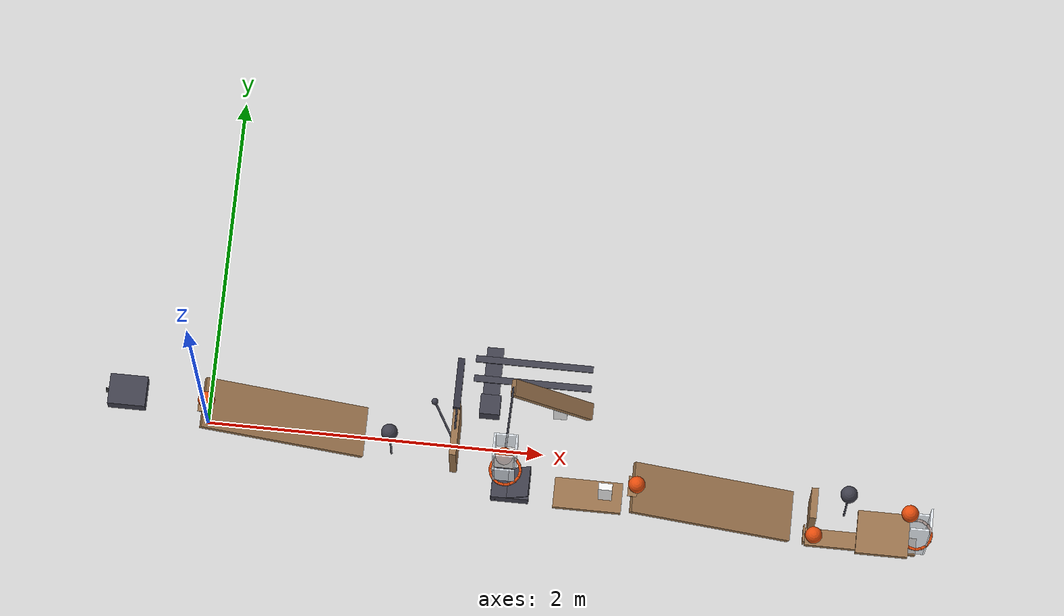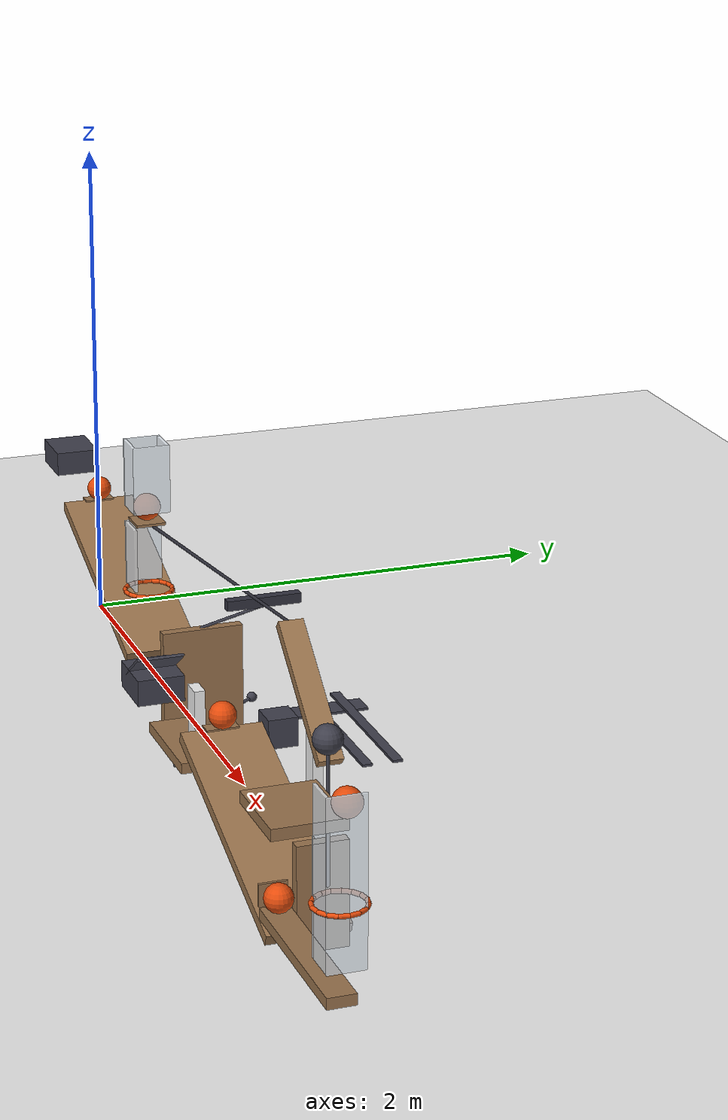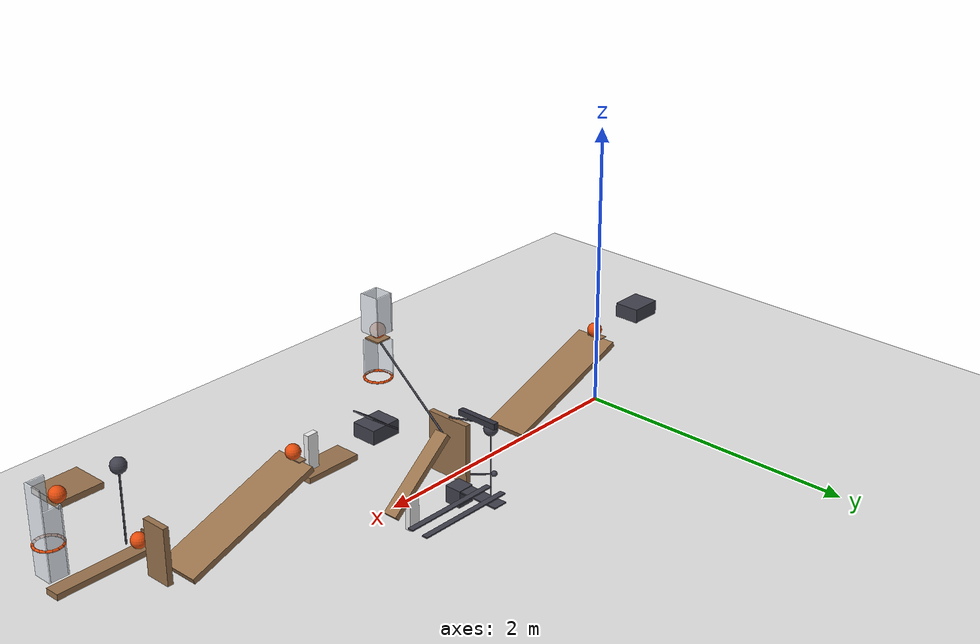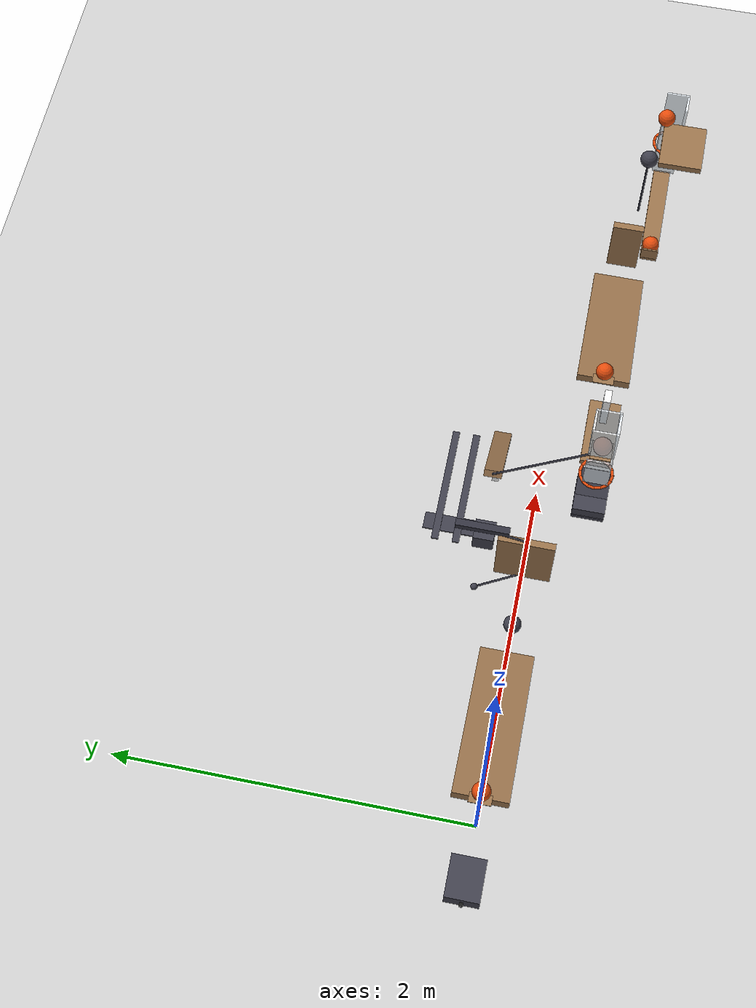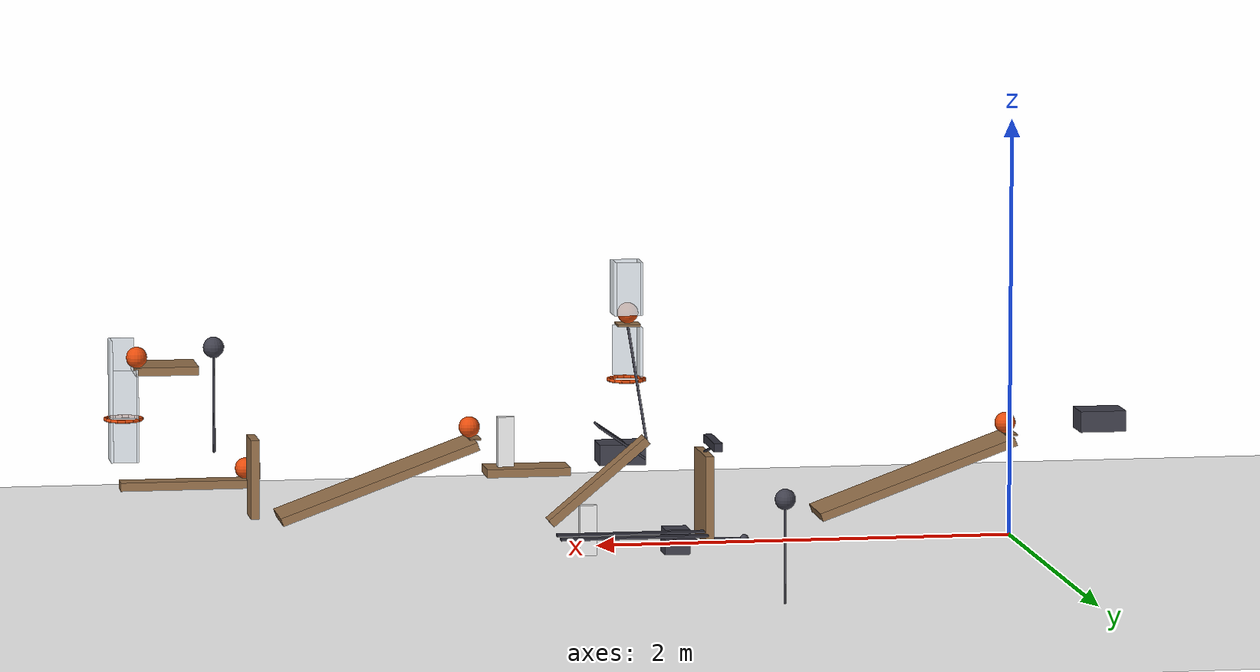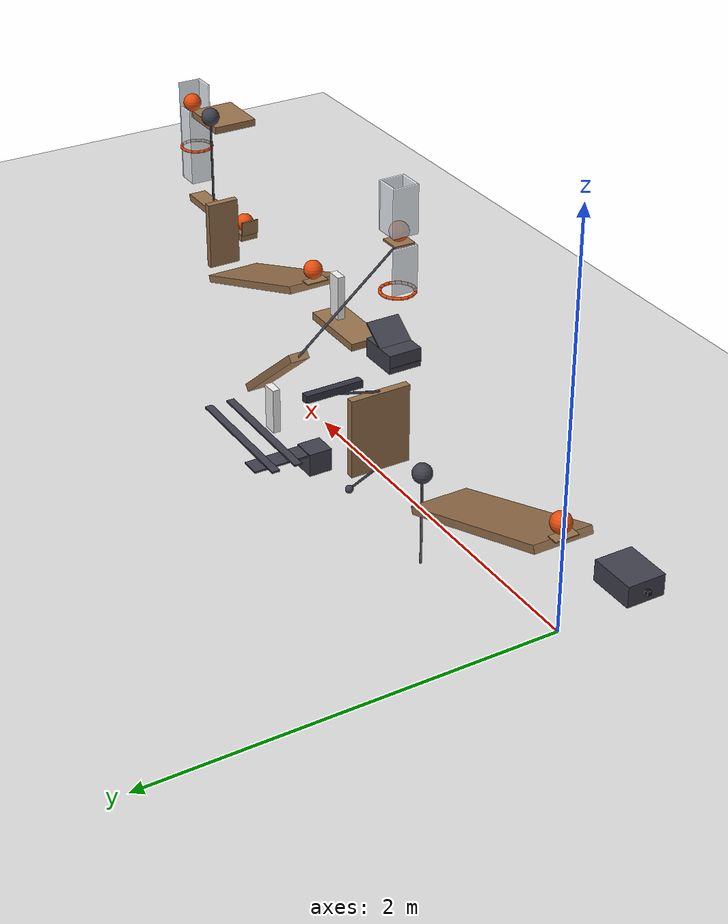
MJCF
<mujoco model="spring_and_gravity_cascade_side_striker_revision">
  <compiler angle="radian"/>
  <option timestep="0.002"/>
  <worldbody>
    <geom name="floor" type="plane" size="12 12 0.1" friction="0.68 0 0"/>
    <body name="cart1" pos="-0.436059 0 0.551004">
      <joint name="cart1_track" type="slide" pos="0 0 0" axis="1 0 0" limited="true" range="-0.2 0.4" damping="0.2"/>
      <geom name="cart1" type="box" pos="0 0 0" size="0.11 0.09 0.05" mass="0.5" friction="0.68 0.005 0.0001" solref="0.01 0.690107" rgba="0.25 0.25 0.3 1"/>
    </body>
    <body name="cart1 spring pusher" pos="-0.556059 0 0.551004">
      <joint name="cart1_spring_track" type="slide" pos="0 0 0" axis="1 0 0" limited="true" range="-0.2 0" stiffness="18" springref="0" damping="0.2"/>
      <geom name="cart1 spring pusher" type="box" pos="0 0 0" size="0.01 0.01 0.01" mass="0.02" friction="0.68 0.005 0.0001" solref="0.01 0.690107" rgba="0.1 0.1 0.1 1"/>
    </body>
    <body name="ramp1">
      <geom name="ramp1" type="box" pos="0.469847 0 0.302216" size="0.5 0.15 0.02" euler="0 0.349066 0" friction="0.68 0.005 0.0001" solref="0.01 0.690107" rgba="0.6 0.45 0.3 1"/>
    </body>
    <body name="ball1 starting pad">
      <geom name="ball1 starting pad" type="box" pos="0.001441 0 0.492004" size="0.0275 0.06 0.003" friction="0.68 0.005 0.0001" solref="0.01 0.690107" rgba="0.6 0.45 0.3 1"/>
    </body>
    <body name="ball1" pos="0.023941 0 0.545004">
      <freejoint/>
      <geom name="ball1" type="sphere" pos="0 0 0" size="0.05" mass="0.2" condim="6" friction="0.68 0 0" solref="0.01 0.690107" rgba="0.9 0.3 0.05 1"/>
    </body>
    <body name="pendulum1" pos="1.08969 0 -0.3">
      <joint name="pendulum1_hinge" type="hinge" pos="0 0 0" axis="0 1 0" limited="true" range="0 0.698132" damping="0.04"/>
      <geom name="pendulum1" type="sphere" pos="0 0 0.5" size="0.05" mass="0.33" friction="0.68 0.005 0.0001" solref="0.01 0.690107" rgba="0.25 0.25 0.3 1"/>
      <geom name="pendulum1 arm" type="capsule" size="0.006" fromto="0 0 0 0 0 0.45" mass="0.02" friction="0.68 0.005 0.0001" solref="0.01 0.690107" contype="0" conaffinity="0" rgba="0.25 0.25 0.3 1"/>
    </body>
    <body name="door1" pos="1.48109 0 0.44">
      <joint name="door1_hinge" type="hinge" pos="0 0 0" axis="0 1 0" limited="true" range="-1.22173 0" damping="0.04"/>
      <geom name="door1" type="box" pos="0 0 -0.21" size="0.21 0.16 0.02" euler="0 -1.5708 0" mass="0.45" friction="0.68 0.005 0.0001" solref="0.01 0.690107" rgba="0.6 0.45 0.3 1"/>
      <geom name="door1 counterweight" type="box" pos="0 0.25 0.08" size="0.02 0.15 0.02" mass="20" friction="0.68 0.005 0.0001" solref="0.01 0.690107" rgba="0.2 0.2 0.25 1"/>
      <geom name="door1 counterweight stem" type="capsule" size="0.006" fromto="0 0 0 0 0.25 0.06" mass="0.001" friction="0.68 0.005 0.0001" solref="0.01 0.690107" rgba="0.25 0.25 0.3 1"/>
      <geom name="door1 striker" type="sphere" pos="-0.15 0.25 -0.38" size="0.02" mass="0.001" friction="0.68 0.005 0.0001" solref="0.01 0.690107" rgba="0.25 0.25 0.3 1"/>
      <geom name="door1 striker arm" type="capsule" size="0.006" fromto="0 0 -0.42 -0.15 0.25 -0.38" mass="0.001" friction="0.68 0.005 0.0001" solref="0.01 0.690107" rgba="0.25 0.25 0.3 1"/>
    </body>
    <body name="block1" pos="1.66109 0.25 0.06">
      <freejoint/>
      <geom name="block1" type="box" pos="0 0 0" size="0.06 0.06 0.06" mass="0.35" friction="0.68 0.005 0.0001" solref="0.01 0.690107" rgba="0.25 0.25 0.3 1"/>
      <geom name="block1 anti lift bar" type="box" pos="0 0.15 0.05" size="0.05 0.2 0.005" mass="0.001" friction="0.68 0.005 0.0001" solref="0.01 0.690107" rgba="0.25 0.25 0.3 1"/>
    </body>
    <body name="block1 left guide rail">
      <geom name="block1 left guide rail" type="box" pos="1.9 0.4 0.123" size="0.35 0.02 0.005" friction="0.68 0.005 0.0001" solref="0.01 0.690107" rgba="0.25 0.25 0.3 1"/>
    </body>
    <body name="block1 right guide rail">
      <geom name="block1 right guide rail" type="box" pos="1.9 0.52 0.123" size="0.35 0.02 0.005" friction="0.68 0.005 0.0001" solref="0.01 0.690107" rgba="0.25 0.25 0.3 1"/>
    </body>
    <body name="domino1" pos="2.08109 0.25 0.12">
      <freejoint/>
      <geom name="domino1" type="box" pos="0 0 0" size="0.04 0.02 0.12" mass="0.25" friction="0.68 0.005 0.0001" solref="0.01 0.690107" rgba="0.95 0.95 0.95 1"/>
    </body>
    <body name="lever1" pos="2.03127 0.25 0.352837">
      <joint name="lever1_hinge" type="hinge" pos="0 0 0" axis="0 1 0" limited="true" range="0 0.785398" damping="0.04"/>
      <geom name="lever1" type="box" pos="-5e-07 0 -5e-07" size="0.3 0.05 0.02" euler="0 0.698132 0" mass="0.5" friction="0.68 0.005 0.0001" solref="0.01 0.690107" rgba="0.6 0.45 0.3 1"/>
      <geom name="ball2 cradle" type="box" pos="-0.229814 -0.55 0.662836" size="0.055 0.055 0.005" mass="0.001" friction="0.68 0.005 0.0001" solref="0.01 0.690107" rgba="0.6 0.45 0.3 1"/>
      <geom name="ball2 carrier" type="capsule" size="0.006" fromto="-0.229814 0 0.192836 -0.229814 -0.55 0.657836" mass="0.001" friction="0.68 0.005 0.0001" solref="0.01 0.690107" rgba="0.25 0.25 0.3 1"/>
    </body>
    <body name="ball2" pos="1.80146 -0.3 1.07067">
      <freejoint/>
      <geom name="ball2" type="sphere" pos="0 0 0" size="0.05" mass="0.2" condim="6" friction="0.68 0 0" solref="0.01 0.690107" rgba="0.9 0.3 0.05 1"/>
    </body>
    <body name="ring1">
      <geom name="ring1_00" type="capsule" size="0.008" fromto="1.89546 -0.3 0.750673 1.88876 -0.266324 0.750673" friction="0.68 0.005 0.0001" solref="0.01 0.690107" rgba="0.9 0.3 0.05 1"/>
      <geom name="ring1_01" type="capsule" size="0.008" fromto="1.88876 -0.266324 0.750673 1.86969 -0.237775 0.750673" friction="0.68 0.005 0.0001" solref="0.01 0.690107" rgba="0.9 0.3 0.05 1"/>
      <geom name="ring1_02" type="capsule" size="0.008" fromto="1.86969 -0.237775 0.750673 1.84114 -0.218699 0.750673" friction="0.68 0.005 0.0001" solref="0.01 0.690107" rgba="0.9 0.3 0.05 1"/>
      <geom name="ring1_03" type="capsule" size="0.008" fromto="1.84114 -0.218699 0.750673 1.80746 -0.212 0.750673" friction="0.68 0.005 0.0001" solref="0.01 0.690107" rgba="0.9 0.3 0.05 1"/>
      <geom name="ring1_04" type="capsule" size="0.008" fromto="1.80746 -0.212 0.750673 1.77378 -0.218699 0.750673" friction="0.68 0.005 0.0001" solref="0.01 0.690107" rgba="0.9 0.3 0.05 1"/>
      <geom name="ring1_05" type="capsule" size="0.008" fromto="1.77378 -0.218699 0.750673 1.74523 -0.237775 0.750673" friction="0.68 0.005 0.0001" solref="0.01 0.690107" rgba="0.9 0.3 0.05 1"/>
      <geom name="ring1_06" type="capsule" size="0.008" fromto="1.74523 -0.237775 0.750673 1.72616 -0.266324 0.750673" friction="0.68 0.005 0.0001" solref="0.01 0.690107" rgba="0.9 0.3 0.05 1"/>
      <geom name="ring1_07" type="capsule" size="0.008" fromto="1.72616 -0.266324 0.750673 1.71946 -0.3 0.750673" friction="0.68 0.005 0.0001" solref="0.01 0.690107" rgba="0.9 0.3 0.05 1"/>
      <geom name="ring1_08" type="capsule" size="0.008" fromto="1.71946 -0.3 0.750673 1.72616 -0.333676 0.750673" friction="0.68 0.005 0.0001" solref="0.01 0.690107" rgba="0.9 0.3 0.05 1"/>
      <geom name="ring1_09" type="capsule" size="0.008" fromto="1.72616 -0.333676 0.750673 1.74523 -0.362225 0.750673" friction="0.68 0.005 0.0001" solref="0.01 0.690107" rgba="0.9 0.3 0.05 1"/>
      <geom name="ring1_10" type="capsule" size="0.008" fromto="1.74523 -0.362225 0.750673 1.77378 -0.381301 0.750673" friction="0.68 0.005 0.0001" solref="0.01 0.690107" rgba="0.9 0.3 0.05 1"/>
      <geom name="ring1_11" type="capsule" size="0.008" fromto="1.77378 -0.381301 0.750673 1.80746 -0.388 0.750673" friction="0.68 0.005 0.0001" solref="0.01 0.690107" rgba="0.9 0.3 0.05 1"/>
      <geom name="ring1_12" type="capsule" size="0.008" fromto="1.80746 -0.388 0.750673 1.84114 -0.381301 0.750673" friction="0.68 0.005 0.0001" solref="0.01 0.690107" rgba="0.9 0.3 0.05 1"/>
      <geom name="ring1_13" type="capsule" size="0.008" fromto="1.84114 -0.381301 0.750673 1.86969 -0.362225 0.750673" friction="0.68 0.005 0.0001" solref="0.01 0.690107" rgba="0.9 0.3 0.05 1"/>
      <geom name="ring1_14" type="capsule" size="0.008" fromto="1.86969 -0.362225 0.750673 1.88876 -0.333676 0.750673" friction="0.68 0.005 0.0001" solref="0.01 0.690107" rgba="0.9 0.3 0.05 1"/>
      <geom name="ring1_15" type="capsule" size="0.008" fromto="1.88876 -0.333676 0.750673 1.89546 -0.3 0.750673" friction="0.68 0.005 0.0001" solref="0.01 0.690107" rgba="0.9 0.3 0.05 1"/>
    </body>
    <body name="ring1 aperture liner">
      <geom name="ring1 aperture liner_rim_00" type="capsule" size="0.004" fromto="1.89311 -0.3 0.750673 1.88659 -0.267226 0.750673" friction="0.68 0.005 0.0001" solref="0.01 0.690107" rgba="0.9 0.3 0.05 1"/>
      <geom name="ring1 aperture liner_rim_01" type="capsule" size="0.004" fromto="1.88659 -0.267226 0.750673 1.86802 -0.23944 0.750673" friction="0.68 0.005 0.0001" solref="0.01 0.690107" rgba="0.9 0.3 0.05 1"/>
      <geom name="ring1 aperture liner_rim_02" type="capsule" size="0.004" fromto="1.86802 -0.23944 0.750673 1.84023 -0.220873 0.750673" friction="0.68 0.005 0.0001" solref="0.01 0.690107" rgba="0.9 0.3 0.05 1"/>
      <geom name="ring1 aperture liner_rim_03" type="capsule" size="0.004" fromto="1.84023 -0.220873 0.750673 1.80746 -0.214355 0.750673" friction="0.68 0.005 0.0001" solref="0.01 0.690107" rgba="0.9 0.3 0.05 1"/>
      <geom name="ring1 aperture liner_rim_04" type="capsule" size="0.004" fromto="1.80746 -0.214355 0.750673 1.77469 -0.220873 0.750673" friction="0.68 0.005 0.0001" solref="0.01 0.690107" rgba="0.9 0.3 0.05 1"/>
      <geom name="ring1 aperture liner_rim_05" type="capsule" size="0.004" fromto="1.77469 -0.220873 0.750673 1.7469 -0.23944 0.750673" friction="0.68 0.005 0.0001" solref="0.01 0.690107" rgba="0.9 0.3 0.05 1"/>
      <geom name="ring1 aperture liner_rim_06" type="capsule" size="0.004" fromto="1.7469 -0.23944 0.750673 1.72833 -0.267226 0.750673" friction="0.68 0.005 0.0001" solref="0.01 0.690107" rgba="0.9 0.3 0.05 1"/>
      <geom name="ring1 aperture liner_rim_07" type="capsule" size="0.004" fromto="1.72833 -0.267226 0.750673 1.72182 -0.3 0.750673" friction="0.68 0.005 0.0001" solref="0.01 0.690107" rgba="0.9 0.3 0.05 1"/>
      <geom name="ring1 aperture liner_rim_08" type="capsule" size="0.004" fromto="1.72182 -0.3 0.750673 1.72833 -0.332774 0.750673" friction="0.68 0.005 0.0001" solref="0.01 0.690107" rgba="0.9 0.3 0.05 1"/>
      <geom name="ring1 aperture liner_rim_09" type="capsule" size="0.004" fromto="1.72833 -0.332774 0.750673 1.7469 -0.36056 0.750673" friction="0.68 0.005 0.0001" solref="0.01 0.690107" rgba="0.9 0.3 0.05 1"/>
      <geom name="ring1 aperture liner_rim_10" type="capsule" size="0.004" fromto="1.7469 -0.36056 0.750673 1.77469 -0.379127 0.750673" friction="0.68 0.005 0.0001" solref="0.01 0.690107" rgba="0.9 0.3 0.05 1"/>
      <geom name="ring1 aperture liner_rim_11" type="capsule" size="0.004" fromto="1.77469 -0.379127 0.750673 1.80746 -0.385645 0.750673" friction="0.68 0.005 0.0001" solref="0.01 0.690107" rgba="0.9 0.3 0.05 1"/>
      <geom name="ring1 aperture liner_rim_12" type="capsule" size="0.004" fromto="1.80746 -0.385645 0.750673 1.84023 -0.379127 0.750673" friction="0.68 0.005 0.0001" solref="0.01 0.690107" rgba="0.9 0.3 0.05 1"/>
      <geom name="ring1 aperture liner_rim_13" type="capsule" size="0.004" fromto="1.84023 -0.379127 0.750673 1.86802 -0.36056 0.750673" friction="0.68 0.005 0.0001" solref="0.01 0.690107" rgba="0.9 0.3 0.05 1"/>
      <geom name="ring1 aperture liner_rim_14" type="capsule" size="0.004" fromto="1.86802 -0.36056 0.750673 1.88659 -0.332774 0.750673" friction="0.68 0.005 0.0001" solref="0.01 0.690107" rgba="0.9 0.3 0.05 1"/>
      <geom name="ring1 aperture liner_rim_15" type="capsule" size="0.004" fromto="1.88659 -0.332774 0.750673 1.89311 -0.3 0.750673" friction="0.68 0.005 0.0001" solref="0.01 0.690107" rgba="0.9 0.3 0.05 1"/>
    </body>
    <body name="ball2 upper guide near wall">
      <geom name="ball2 upper guide near wall" type="box" pos="1.74446 -0.3 1.19317" size="0.005 0.068 0.1275" friction="0.68 0.005 0.0001" solref="0.01 0.690107" rgba="0.92 0.95 0.98 0.85"/>
    </body>
    <body name="ball2 upper guide far wall">
      <geom name="ball2 upper guide far wall" type="box" pos="1.87046 -0.3 1.19317" size="0.005 0.068 0.1275" friction="0.68 0.005 0.0001" solref="0.01 0.690107" rgba="0.92 0.95 0.98 0.85"/>
    </body>
    <body name="ball2 upper guide left wall">
      <geom name="ball2 upper guide left wall" type="box" pos="1.80746 -0.237 1.19317" size="0.058 0.005 0.1275" friction="0.68 0.005 0.0001" solref="0.01 0.690107" rgba="0.92 0.95 0.98 0.85"/>
    </body>
    <body name="ball2 upper guide right wall">
      <geom name="ball2 upper guide right wall" type="box" pos="1.80746 -0.363 1.19317" size="0.058 0.005 0.1275" friction="0.68 0.005 0.0001" solref="0.01 0.690107" rgba="0.92 0.95 0.98 0.85"/>
    </body>
    <body name="ball2 lower guide near wall">
      <geom name="ball2 lower guide near wall" type="box" pos="1.74446 -0.3 0.885673" size="0.005 0.068 0.12" friction="0.68 0.005 0.0001" solref="0.01 0.690107" rgba="0.92 0.95 0.98 0.85"/>
    </body>
    <body name="ball2 lower guide right wall">
      <geom name="ball2 lower guide right wall" type="box" pos="1.80746 -0.363 0.885673" size="0.058 0.005 0.12" friction="0.68 0.005 0.0001" solref="0.01 0.690107" rgba="0.92 0.95 0.98 0.85"/>
    </body>
    <body name="cart2" pos="1.83901 -0.3 0.399">
      <joint name="cart2_track" type="slide" pos="0 0 0" axis="1 0 0" limited="true" range="0 0.5" damping="0.2"/>
      <geom name="cart2" type="box" pos="0 0 0" size="0.11 0.09 0.05" mass="0.5" friction="0.68 0.005 0.0001" solref="0.01 0.690107" rgba="0.25 0.25 0.3 1"/>
      <geom name="cart2 contact plate" type="box" pos="0 0 0.056619" size="0.134285 0.09 0.005" euler="0 -0.610866 0" mass="0.001" friction="0.68 0.005 0.0001" solref="0.01 0.690107" rgba="0.25 0.25 0.3 1"/>
    </body>
    <body name="domino2 stage">
      <geom name="domino2 stage" type="box" pos="2.29188 -0.3 0.325" size="0.2 0.09 0.02" friction="0.68 0.005 0.0001" solref="0.01 0.690107" rgba="0.6 0.45 0.3 1"/>
    </body>
    <body name="domino2" pos="2.39188 -0.3 0.465">
      <freejoint/>
      <geom name="domino2" type="box" pos="0 0 0" size="0.04 0.02 0.12" mass="0.25" friction="0.68 0.005 0.0001" solref="0.01 0.690107" rgba="0.95 0.95 0.95 1"/>
    </body>
    <body name="ramp2">
      <geom name="ramp2" type="box" pos="3.01778 -0.26 0.302216" size="0.5 0.15 0.02" euler="0 0.349066 0" friction="0.68 0.005 0.0001" solref="0.01 0.690107" rgba="0.6 0.45 0.3 1"/>
    </body>
    <body name="ball3 starting pad">
      <geom name="ball3 starting pad" type="box" pos="2.54937 -0.26 0.492004" size="0.0275 0.06 0.003" friction="0.68 0.005 0.0001" solref="0.01 0.690107" rgba="0.6 0.45 0.3 1"/>
    </body>
    <body name="ball3" pos="2.57187 -0.26 0.545004">
      <freejoint/>
      <geom name="ball3" type="sphere" pos="0 0 0" size="0.05" mass="0.2" condim="6" friction="0.68 0 0" solref="0.01 0.690107" rgba="0.9 0.3 0.05 1"/>
    </body>
    <body name="flap1" pos="3.60763 -0.26 0.14">
      <joint name="flap1_hinge" type="hinge" pos="0 0 0" axis="0 1 0" limited="true" range="0 1.0472" damping="0.04"/>
      <geom name="flap1" type="box" pos="0 0 0.19" size="0.19 0.09 0.02" euler="0 -1.5708 0" mass="0.28" friction="0.68 0.005 0.0001" solref="0.01 0.690107" rgba="0.6 0.45 0.3 1"/>
    </body>
    <body name="pendulum2" pos="3.78763 -0.3 0.45">
      <joint name="pendulum2_hinge" type="hinge" pos="0 0 0" axis="0 1 0" limited="true" range="0 0.663225" damping="0.04"/>
      <geom name="pendulum2" type="sphere" pos="0 0 0.5" size="0.05" mass="0.33" friction="0.68 0.005 0.0001" solref="0.01 0.690107" rgba="0.25 0.25 0.3 1"/>
      <geom name="pendulum2 arm" type="capsule" size="0.006" fromto="0 0 0 0 0 0.45" mass="0.02" friction="0.68 0.005 0.0001" solref="0.01 0.690107" rgba="0.25 0.25 0.3 1"/>
    </body>
    <body name="shelf1">
      <geom name="shelf1" type="box" pos="4.00184 -0.485 0.83" size="0.15 0.125 0.02" friction="0.68 0.005 0.0001" solref="0.01 0.690107" rgba="0.6 0.45 0.3 1"/>
    </body>
    <body name="ball4" pos="4.14684 -0.365 0.9">
      <freejoint/>
      <geom name="ball4" type="sphere" pos="0 0 0" size="0.05" mass="0.2" condim="6" friction="0.68 0 0" solref="0.01 0.690107" rgba="0.9 0.3 0.05 1"/>
    </body>
    <body name="ring2">
      <geom name="ring2_00" type="capsule" size="0.008" fromto="4.29484 -0.41 0.6 4.28815 -0.376324 0.6" friction="0.68 0.005 0.0001" solref="0.01 0.690107" rgba="0.9 0.3 0.05 1"/>
      <geom name="ring2_01" type="capsule" size="0.008" fromto="4.28815 -0.376324 0.6 4.26907 -0.347775 0.6" friction="0.68 0.005 0.0001" solref="0.01 0.690107" rgba="0.9 0.3 0.05 1"/>
      <geom name="ring2_02" type="capsule" size="0.008" fromto="4.26907 -0.347775 0.6 4.24052 -0.328699 0.6" friction="0.68 0.005 0.0001" solref="0.01 0.690107" rgba="0.9 0.3 0.05 1"/>
      <geom name="ring2_03" type="capsule" size="0.008" fromto="4.24052 -0.328699 0.6 4.20684 -0.322 0.6" friction="0.68 0.005 0.0001" solref="0.01 0.690107" rgba="0.9 0.3 0.05 1"/>
      <geom name="ring2_04" type="capsule" size="0.008" fromto="4.20684 -0.322 0.6 4.17317 -0.328699 0.6" friction="0.68 0.005 0.0001" solref="0.01 0.690107" rgba="0.9 0.3 0.05 1"/>
      <geom name="ring2_05" type="capsule" size="0.008" fromto="4.17317 -0.328699 0.6 4.14462 -0.347775 0.6" friction="0.68 0.005 0.0001" solref="0.01 0.690107" rgba="0.9 0.3 0.05 1"/>
      <geom name="ring2_06" type="capsule" size="0.008" fromto="4.14462 -0.347775 0.6 4.12554 -0.376324 0.6" friction="0.68 0.005 0.0001" solref="0.01 0.690107" rgba="0.9 0.3 0.05 1"/>
      <geom name="ring2_07" type="capsule" size="0.008" fromto="4.12554 -0.376324 0.6 4.11884 -0.41 0.6" friction="0.68 0.005 0.0001" solref="0.01 0.690107" rgba="0.9 0.3 0.05 1"/>
      <geom name="ring2_08" type="capsule" size="0.008" fromto="4.11884 -0.41 0.6 4.12554 -0.443676 0.6" friction="0.68 0.005 0.0001" solref="0.01 0.690107" rgba="0.9 0.3 0.05 1"/>
      <geom name="ring2_09" type="capsule" size="0.008" fromto="4.12554 -0.443676 0.6 4.14462 -0.472225 0.6" friction="0.68 0.005 0.0001" solref="0.01 0.690107" rgba="0.9 0.3 0.05 1"/>
      <geom name="ring2_10" type="capsule" size="0.008" fromto="4.14462 -0.472225 0.6 4.17317 -0.491301 0.6" friction="0.68 0.005 0.0001" solref="0.01 0.690107" rgba="0.9 0.3 0.05 1"/>
      <geom name="ring2_11" type="capsule" size="0.008" fromto="4.17317 -0.491301 0.6 4.20684 -0.498 0.6" friction="0.68 0.005 0.0001" solref="0.01 0.690107" rgba="0.9 0.3 0.05 1"/>
      <geom name="ring2_12" type="capsule" size="0.008" fromto="4.20684 -0.498 0.6 4.24052 -0.491301 0.6" friction="0.68 0.005 0.0001" solref="0.01 0.690107" rgba="0.9 0.3 0.05 1"/>
      <geom name="ring2_13" type="capsule" size="0.008" fromto="4.24052 -0.491301 0.6 4.26907 -0.472225 0.6" friction="0.68 0.005 0.0001" solref="0.01 0.690107" rgba="0.9 0.3 0.05 1"/>
      <geom name="ring2_14" type="capsule" size="0.008" fromto="4.26907 -0.472225 0.6 4.28815 -0.443676 0.6" friction="0.68 0.005 0.0001" solref="0.01 0.690107" rgba="0.9 0.3 0.05 1"/>
      <geom name="ring2_15" type="capsule" size="0.008" fromto="4.28815 -0.443676 0.6 4.29484 -0.41 0.6" friction="0.68 0.005 0.0001" solref="0.01 0.690107" rgba="0.9 0.3 0.05 1"/>
    </body>
    <body name="ring2 aperture liner">
      <geom name="ring2 aperture liner_rim_00" type="capsule" size="0.004" fromto="4.29249 -0.41 0.6 4.28597 -0.377226 0.6" friction="0.68 0.005 0.0001" solref="0.01 0.690107" rgba="0.9 0.3 0.05 1"/>
      <geom name="ring2 aperture liner_rim_01" type="capsule" size="0.004" fromto="4.28597 -0.377226 0.6 4.2674 -0.34944 0.6" friction="0.68 0.005 0.0001" solref="0.01 0.690107" rgba="0.9 0.3 0.05 1"/>
      <geom name="ring2 aperture liner_rim_02" type="capsule" size="0.004" fromto="4.2674 -0.34944 0.6 4.23962 -0.330873 0.6" friction="0.68 0.005 0.0001" solref="0.01 0.690107" rgba="0.9 0.3 0.05 1"/>
      <geom name="ring2 aperture liner_rim_03" type="capsule" size="0.004" fromto="4.23962 -0.330873 0.6 4.20684 -0.324355 0.6" friction="0.68 0.005 0.0001" solref="0.01 0.690107" rgba="0.9 0.3 0.05 1"/>
      <geom name="ring2 aperture liner_rim_04" type="capsule" size="0.004" fromto="4.20684 -0.324355 0.6 4.17407 -0.330873 0.6" friction="0.68 0.005 0.0001" solref="0.01 0.690107" rgba="0.9 0.3 0.05 1"/>
      <geom name="ring2 aperture liner_rim_05" type="capsule" size="0.004" fromto="4.17407 -0.330873 0.6 4.14628 -0.34944 0.6" friction="0.68 0.005 0.0001" solref="0.01 0.690107" rgba="0.9 0.3 0.05 1"/>
      <geom name="ring2 aperture liner_rim_06" type="capsule" size="0.004" fromto="4.14628 -0.34944 0.6 4.12772 -0.377226 0.6" friction="0.68 0.005 0.0001" solref="0.01 0.690107" rgba="0.9 0.3 0.05 1"/>
      <geom name="ring2 aperture liner_rim_07" type="capsule" size="0.004" fromto="4.12772 -0.377226 0.6 4.1212 -0.41 0.6" friction="0.68 0.005 0.0001" solref="0.01 0.690107" rgba="0.9 0.3 0.05 1"/>
      <geom name="ring2 aperture liner_rim_08" type="capsule" size="0.004" fromto="4.1212 -0.41 0.6 4.12772 -0.442774 0.6" friction="0.68 0.005 0.0001" solref="0.01 0.690107" rgba="0.9 0.3 0.05 1"/>
      <geom name="ring2 aperture liner_rim_09" type="capsule" size="0.004" fromto="4.12772 -0.442774 0.6 4.14628 -0.47056 0.6" friction="0.68 0.005 0.0001" solref="0.01 0.690107" rgba="0.9 0.3 0.05 1"/>
      <geom name="ring2 aperture liner_rim_10" type="capsule" size="0.004" fromto="4.14628 -0.47056 0.6 4.17407 -0.489127 0.6" friction="0.68 0.005 0.0001" solref="0.01 0.690107" rgba="0.9 0.3 0.05 1"/>
      <geom name="ring2 aperture liner_rim_11" type="capsule" size="0.004" fromto="4.17407 -0.489127 0.6 4.20684 -0.495645 0.6" friction="0.68 0.005 0.0001" solref="0.01 0.690107" rgba="0.9 0.3 0.05 1"/>
      <geom name="ring2 aperture liner_rim_12" type="capsule" size="0.004" fromto="4.20684 -0.495645 0.6 4.23962 -0.489127 0.6" friction="0.68 0.005 0.0001" solref="0.01 0.690107" rgba="0.9 0.3 0.05 1"/>
      <geom name="ring2 aperture liner_rim_13" type="capsule" size="0.004" fromto="4.23962 -0.489127 0.6 4.2674 -0.47056 0.6" friction="0.68 0.005 0.0001" solref="0.01 0.690107" rgba="0.9 0.3 0.05 1"/>
      <geom name="ring2 aperture liner_rim_14" type="capsule" size="0.004" fromto="4.2674 -0.47056 0.6 4.28597 -0.442774 0.6" friction="0.68 0.005 0.0001" solref="0.01 0.690107" rgba="0.9 0.3 0.05 1"/>
      <geom name="ring2 aperture liner_rim_15" type="capsule" size="0.004" fromto="4.28597 -0.442774 0.6 4.29249 -0.41 0.6" friction="0.68 0.005 0.0001" solref="0.01 0.690107" rgba="0.9 0.3 0.05 1"/>
    </body>
    <body name="ball4 guide near wall">
      <geom name="ball4 guide near wall" type="box" pos="4.14584 -0.41 0.62" size="0.005 0.066 0.22" friction="0.68 0.005 0.0001" solref="0.01 0.690107" rgba="0.92 0.95 0.98 0.85"/>
    </body>
    <body name="ball4 guide far wall">
      <geom name="ball4 guide far wall" type="box" pos="4.26784 -0.41 0.69" size="0.005 0.066 0.29" friction="0.68 0.005 0.0001" solref="0.01 0.690107" rgba="0.92 0.95 0.98 0.85"/>
    </body>
    <body name="ball4 guide left wall">
      <geom name="ball4 guide left wall" type="box" pos="4.20684 -0.349 0.62" size="0.056 0.005 0.22" friction="0.68 0.005 0.0001" solref="0.01 0.690107" rgba="0.92 0.95 0.98 0.85"/>
    </body>
    <body name="ball4 guide right wall">
      <geom name="ball4 guide right wall" type="box" pos="4.20684 -0.471 0.69" size="0.056 0.005 0.29" friction="0.68 0.005 0.0001" solref="0.01 0.690107" rgba="0.92 0.95 0.98 0.85"/>
    </body>
    <body name="seesaw1" pos="3.90184 -0.41 0.28">
      <joint name="seesaw1_hinge" type="hinge" pos="0 0 0" axis="0 1 0" limited="true" range="0 0.733038" damping="0.04"/>
      <geom name="seesaw1" type="box" pos="0 0 0" size="0.325 0.05 0.02" mass="0.55" friction="0.68 0.005 0.0001" solref="0.01 0.690107" rgba="0.6 0.45 0.3 1"/>
      <geom name="ball5 retaining stop" type="box" pos="-0.335 0 0.06" size="0.005 0.05 0.04" mass="0.001" friction="0.68 0.005 0.0001" solref="0.01 0.690107" rgba="0.6 0.45 0.3 1"/>
    </body>
    <body name="ball5" pos="3.62684 -0.41 0.35">
      <freejoint/>
      <geom name="ball5" type="sphere" pos="0 0 0" size="0.05" mass="0.2" condim="6" friction="0.68 0 0" solref="0.01 0.690107" rgba="0.9 0.3 0.05 1"/>
    </body>
  </worldbody>
  <keyframe>
    <key name="start" qpos="-0.2 -0.2 0.023941 0 0.545004 1 0 0 0 0 0 1.66109 0.25 0.06 1 0 0 0 2.08109 0.25 0.12 1 0 0 0 0 1.80146 -0.3 1.07067 1 0 0 0 0 2.39188 -0.3 0.465 1 0 0 0 2.57187 -0.26 0.545004 1 0 0 0 0 0 4.14684 -0.365 0.9 1 0 0 0 0 3.62684 -0.41 0.35 1 0 0 0" qvel="0 0 0 0 0 0 0 0 0 0 0 0 0 0 0 0 0 0 0 0 0 0 0 0 0 0 0 0 0 0 0 0 0 0 0 0 0 0 0 0 0 0 0 0 0 0 0 0 0 0 0 0 0 0 0 0 0"/>
  </keyframe>
</mujoco>
